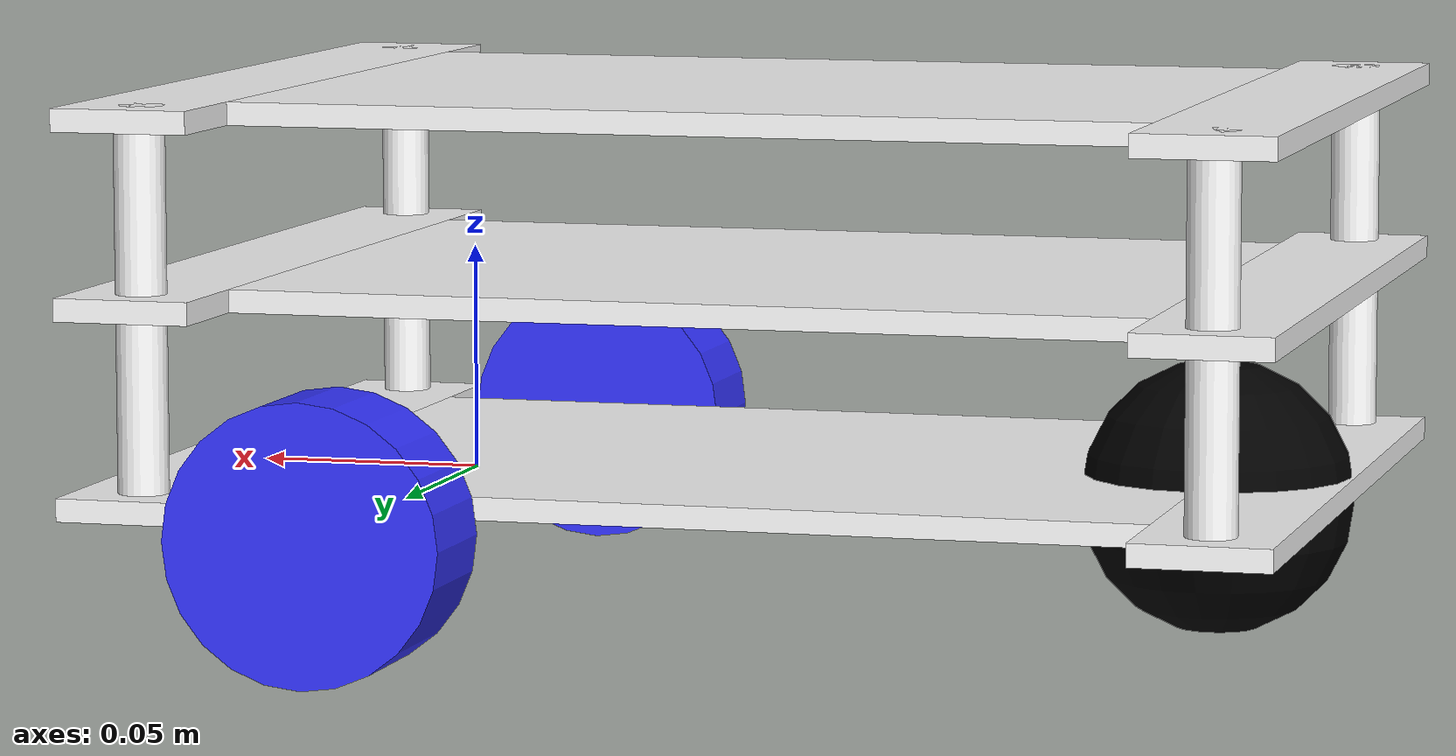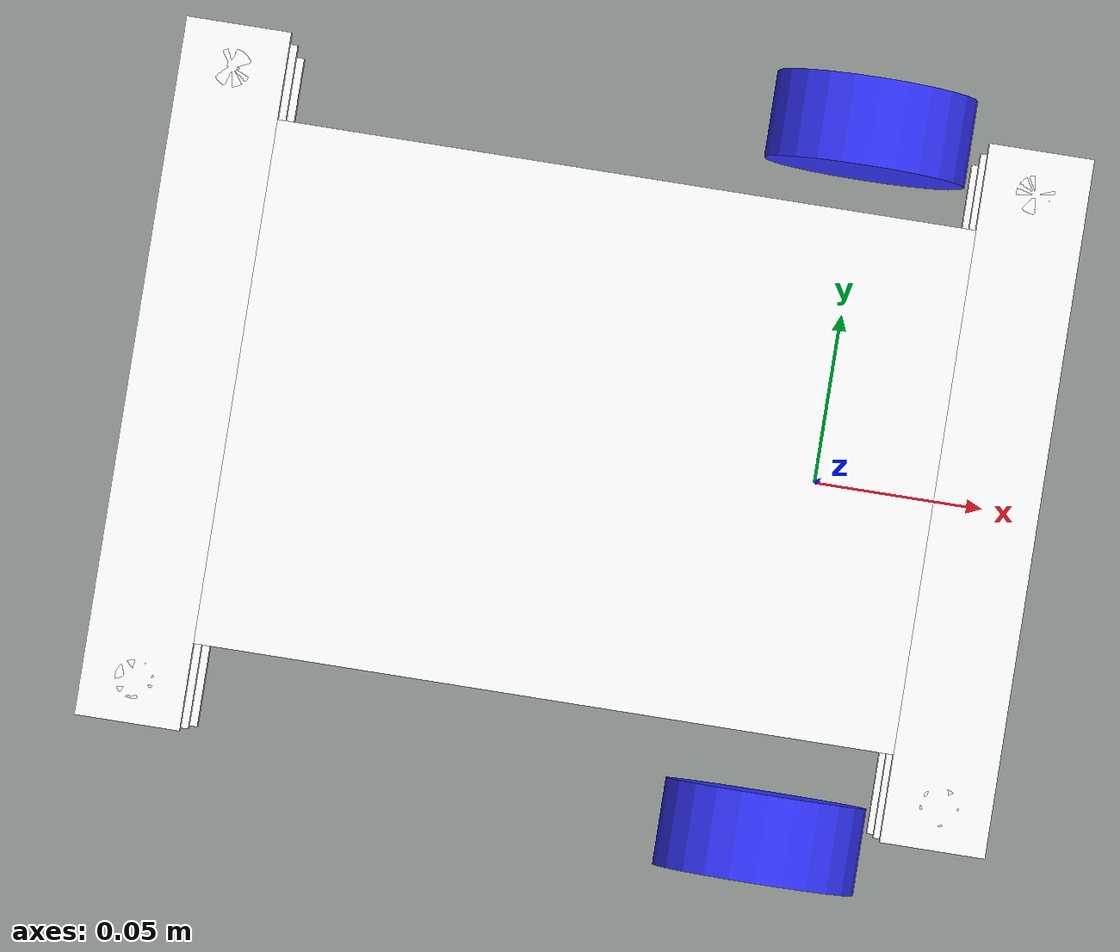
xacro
<?xml version="1.0"?>
<robot xmlns:xacro="http://www.ros.org/wiki/xacro" >

    <xacro:include filename ="inertial_macros.xacro"/>

    <material name ="white">
        <color rgba="1 1 1 1" />
    </material>

    <material name ="orange">
        <color rgba="1 0.3 0.1 1" />
    </material>

    <material name ="blue">
        <color rgba="0.2 0.2 1 1" />
    </material>

    <material name ="black">
        <color rgba="0 0 0 1" />
    </material>

    <material name ="red">
        <color rgba="1 0 0 1" />
    </material>

<!--  BASE LINK  -->
    <link name="base_link">

    </link>
<!--BASE_FOOT LINK-->

    <joint name="base_footprint_joint" type="fixed">
        <parent link="base_link"/>
        <child link="base_footprint"/>
        <origin xyz="0 0 0" rpy="0 0 0"/>
    </joint>

    <link name="base_footprint">

    </link>

<!--  Robot URDF description  -->
    <joint name="chassis_joint" type="fixed">
        <parent link= "base_link"/>
        <child link="chassis"/>
        <origin xyz="-0.069 0 0"/>
    </joint>

    <link name="chassis">
        <visual>
            <origin xyz="0 0 0.0025"/>
            <geometry>
                <box size="0.2 0.15 0.005"/>
            </geometry>
            <material name="white"/>
        </visual>
        <collision>
            <origin xyz="0 0 0.0025"/>
            <geometry>
                <box size="0.2 0.15 0.005"/>
            </geometry>
        </collision>
        <xacro:inertial_box mass="0.015" x="0.2" y="0.15" z="0.005">
            <origin xyz= "0 0 0.0025" rpy="0 0 0"/>
        </xacro:inertial_box>

        <!-- front chassis -->
        <visual>
            <origin xyz="0.115 0 0.0025"/>
            <geometry>
                <box size="0.03 0.2 0.005"/>
            </geometry>
            <material name="white"/>
        </visual>
        <collision>
            <origin xyz="0.115 0 0.0025"/>
            <geometry>
                <box size="0.03 0.2 0.005"/>
            </geometry>
        </collision>
        <xacro:inertial_box mass="0.005" x="0.03" y="0.2" z="0.005">
            <origin xyz= "0.115 0 0.0025" rpy="0 0 0"/>
        </xacro:inertial_box>

        <!-- back chassis -->
        <visual>
            <origin xyz="-0.115 0 0.0025"/>
            <geometry>
                <box size="0.03 0.2 0.005"/>
            </geometry>
            <material name="white"/>
        </visual>
        <collision>
            <origin xyz="-0.115 0 0.0025"/>
            <geometry>
                <box size="0.03 0.2 0.005"/>
            </geometry>
        </collision>
        <xacro:inertial_box mass="0.005" x="0.03" y="0.2" z="0.005">
            <origin xyz= "-0.115 0 0.0025" rpy="0 0 0"/>
        </xacro:inertial_box>

        <!-- Front_Right_spacer -->
        <visual>
            <origin xyz="0.115 0.0875 0.025"/>
            <geometry>
                <cylinder radius = "0.0055" length="0.045"/>
            </geometry>
            <material name="white"/>
        </visual>
        <collision>
            <origin xyz="0.115 0.0875 0.025"/>
            <geometry>
                <cylinder radius = "0.0055" length="0.045"/>
            </geometry>
        </collision>
        <xacro:inertial_cylinder mass="0.005" length="0.04" radius="0.0055">
            <origin xyz= "0.115 0.0875 0.025" rpy="0 0 0"/>
        </xacro:inertial_cylinder>

        <!-- Front_Left_spacer -->
        <visual>
            <origin xyz="0.115 -0.0875 0.025"/>
            <geometry>
                <cylinder radius = "0.0055" length="0.045"/>
            </geometry>
            <material name="white"/>
        </visual>
        <collision>
            <origin xyz="0.115 -0.0875 0.025"/>
            <geometry>
                <cylinder radius = "0.0055" length="0.045"/>
            </geometry>
        </collision>
        <xacro:inertial_cylinder mass="0.005" length="0.04" radius="0.0055">
            <origin xyz= "0.115 -0.0875 0.025" rpy="0 0 0"/>
        </xacro:inertial_cylinder>

        <!-- Back_Right_spacer -->
        <visual>
            <origin xyz="-0.115 0.0875 0.025"/>
            <geometry>
                <cylinder radius = "0.0055" length="0.045"/>
            </geometry>
            <material name="white"/>
        </visual>
        <collision>
            <origin xyz="-0.115 0.0875 0.025"/>
            <geometry>
                <cylinder radius = "0.0055" length="0.045"/>
            </geometry>
        </collision>
        <xacro:inertial_cylinder mass="0.005" length="0.04" radius="0.0055">
            <origin xyz= "-0.115 0.0875 0.025" rpy="0 0 0"/>
        </xacro:inertial_cylinder>

        <!-- Back_left_spacer -->
        <visual>
            <origin xyz="-0.115 -0.0875 0.025"/>
            <geometry>
                <cylinder radius = "0.0055" length="0.045"/>
            </geometry>
            <material name="white"/>
        </visual>
        <collision>
            <origin xyz="-0.115 -0.0875 0.025"/>
            <geometry>
                <cylinder radius = "0.0055" length="0.045"/>
            </geometry>
        </collision>
        <xacro:inertial_cylinder mass="0.005" length="0.04" radius="0.0055">
            <origin xyz= "-0.115 -0.0875 0.025" rpy="0 0 0"/>
        </xacro:inertial_cylinder>

        <!--Second stage-->                                     <!--Second stage-->

        <visual>
            <origin xyz="0 0 0.045"/>
            <geometry>
                <box size="0.2 0.15 0.005"/>
            </geometry>
            <material name="white"/>
        </visual>
        <collision>
            <origin xyz="0 0 0.045"/>
            <geometry>
                <box size="0.2 0.15 0.005"/>
            </geometry>
        </collision>
        <xacro:inertial_box mass="0.015" x="0.2" y="0.15" z="0.005">
            <origin xyz= "0 0 0.045" rpy="0 0 0"/>
        </xacro:inertial_box>

        <!-- front chassis -->
        <visual>
            <origin xyz="0.115 0 0.045"/>
            <geometry>
                <box size="0.03 0.2 0.005"/>
            </geometry>
            <material name="white"/>
        </visual>
        <collision>
            <origin xyz="0.115 0 0.045"/>
            <geometry>
                <box size="0.03 0.2 0.005"/>
            </geometry>
        </collision>
        <xacro:inertial_box mass="0.005" x="0.03" y="0.2" z="0.005">
            <origin xyz= "0.115 0 0.045" rpy="0 0 0"/>
        </xacro:inertial_box>

        <!-- back chassis -->
        <visual>
            <origin xyz="-0.115 0 0.045"/>
            <geometry>
                <box size="0.03 0.2 0.005"/>
            </geometry>
            <material name="white"/>
        </visual>
        <collision>
            <origin xyz="-0.115 0 0.045"/>
            <geometry>
                <box size="0.03 0.2 0.005"/>
            </geometry>
        </collision>
        <xacro:inertial_box mass="0.005" x="0.03" y="0.2" z="0.005">
            <origin xyz= "-0.115 0 0.045" rpy="0 0 0"/>
        </xacro:inertial_box>

        <!-- Front_Right_spacer -->
        <visual>
            <origin xyz="0.115 0.0875 0.065"/>
            <geometry>
                <cylinder radius = "0.0055" length="0.045"/>
            </geometry>
            <material name="white"/>
        </visual>
        <collision>
            <origin xyz="0.115 0.0875 0.065"/>
            <geometry>
                <cylinder radius = "0.0055" length="0.045"/>
            </geometry>
        </collision>
        <xacro:inertial_cylinder mass="0.005" length="0.04" radius="0.0055">
            <origin xyz= "0.115 0.0875 0.065" rpy="0 0 0"/>
        </xacro:inertial_cylinder>

        <!-- Front_Left_spacer -->
        <visual>
            <origin xyz="0.115 -0.0875 0.065"/>
            <geometry>
                <cylinder radius = "0.0055" length="0.045"/>
            </geometry>
            <material name="white"/>
        </visual>
        <collision>
            <origin xyz="0.115 -0.0875 0.065"/>
            <geometry>
                <cylinder radius = "0.0055" length="0.045"/>
            </geometry>
        </collision>
        <xacro:inertial_cylinder mass="0.005" length="0.04" radius="0.0055">
            <origin xyz= "0.115 -0.0875 0.065" rpy="0 0 0"/>
        </xacro:inertial_cylinder>

        <!-- Back_Right_spacer -->
        <visual>
            <origin xyz="-0.115 0.0875 0.065"/>
            <geometry>
                <cylinder radius = "0.0055" length="0.045"/>
            </geometry>
            <material name="white"/>
        </visual>
        <collision>
            <origin xyz="-0.115 0.0875 0.065"/>
            <geometry>
                <cylinder radius = "0.0055" length="0.045"/>
            </geometry>
        </collision>
        <xacro:inertial_cylinder mass="0.005" length="0.04" radius="0.0055">
            <origin xyz= "-0.115 0.0875 0.065" rpy="0 0 0"/>
        </xacro:inertial_cylinder>

        <!-- Back_left_spacer -->
        <visual>
            <origin xyz="-0.115 -0.0875 0.065"/>
            <geometry>
                <cylinder radius = "0.0055" length="0.045"/>
            </geometry>
            <material name="white"/>
        </visual>
        <collision>
            <origin xyz="-0.115 -0.0875 0.065"/>
            <geometry>
                <cylinder radius = "0.0055" length="0.045"/>
            </geometry>
        </collision>
        <xacro:inertial_cylinder mass="0.005" length="0.04" radius="0.0055">
            <origin xyz= "-0.115 -0.0875 0.065" rpy="0 0 0"/>
        </xacro:inertial_cylinder>

        <!--Third stage-->                                     <!--Third stage-->

        <visual>
            <origin xyz="0 0 0.085"/>
            <geometry>
                <box size="0.2 0.15 0.005"/>
            </geometry>
            <material name="white"/>
        </visual>
        <collision>
            <origin xyz="0 0 0.085"/>
            <geometry>
                <box size="0.2 0.15 0.005"/>
            </geometry>
        </collision>
        <xacro:inertial_box mass="0.015" x="0.2" y="0.15" z="0.005">
            <origin xyz= "0 0 0.085" rpy="0 0 0"/>
        </xacro:inertial_box>

        <!-- front chassis -->
        <visual>
            <origin xyz="0.115 0 0.085"/>
            <geometry>
                <box size="0.03 0.2 0.005"/>
            </geometry>
            <material name="white"/>
        </visual>
        <collision>
            <origin xyz="0.115 0 0.085"/>
            <geometry>
                <box size="0.03 0.2 0.005"/>
            </geometry>
        </collision>
        <xacro:inertial_box mass="0.005" x="0.03" y="0.2" z="0.005">
            <origin xyz= "0.115 0 0.085" rpy="0 0 0"/>
        </xacro:inertial_box>

        <!-- back chassis -->
        <visual>
            <origin xyz="-0.115 0 0.085"/>
            <geometry>
                <box size="0.03 0.2 0.005"/>
            </geometry>
            <material name="white"/>
        </visual>
        <collision>
            <origin xyz="-0.115 0 0.085"/>
            <geometry>
                <box size="0.03 0.2 0.005"/>
            </geometry>
        </collision>
        <xacro:inertial_box mass="0.005" x="0.03" y="0.2" z="0.005">
            <origin xyz= "-0.115 0 0.085" rpy="0 0 0"/>
        </xacro:inertial_box>
    </link>

    <!-- Wheels -->       <!-- Wheels -->

     <!-- Left Wheel Link-->

    <joint name="left_wheel_joint" type="continuous">
        <parent link= "base_link"/>
        <child link="left_wheel"/>
        <origin xyz="0 0.106 0" rpy="-${pi/2} 0 0"/>
        <axis xyz="0 0 1"/>
        <limit effort="100" velocity="10.0"/>
        <dynamics damping="0.1" friction="0.1"/>
    </joint>

    <link name="left_wheel">
        <visual>
            <geometry>
                <cylinder radius="0.03" length="0.026"/>
            </geometry>
            <material name="blue"/>
        </visual>
        <collision>
            <geometry>
                <cylinder radius="0.03" length="0.026"/>
            </geometry>
        </collision>
        <xacro:inertial_cylinder mass="0.02" length="0.026" radius="0.03">
            <origin xyz= "0 0 0" rpy="0 0 0"/>
        </xacro:inertial_cylinder>
    </link>

    <!-- Right Wheel Link-->

    <joint name="right_wheel_joint" type="continuous">
        <parent link= "base_link"/>
        <child link="right_wheel"/>
        <origin xyz="0. -0.106 0" rpy="${pi/2} 0 0"/>
        <axis xyz="0 0 -1"/>
        <limit effort="100" velocity="10.0"/>
        <dynamics damping="0.1" friction="0.1"/>
    </joint>

    <link name="right_wheel">
        <visual>
            <geometry>
                <cylinder radius="0.03" length="0.026"/>
            </geometry>
            <material name="blue"/>
        </visual>
        <collision>
            <geometry>
                <cylinder radius="0.03" length="0.026"/>
            </geometry>
        </collision>
        <xacro:inertial_cylinder mass="0.02" length="0.026" radius="0.03">
            <origin xyz= "0 0 0" rpy="0 0 0"/>
        </xacro:inertial_cylinder>
    </link>

    <!--Caster Wheel Link -->
    <joint name="caster_wheel_joint" type="fixed">
        <parent link="chassis"/>
        <child link="caster_wheel"/>
        <origin xyz="-0.1 0 0"/>
    </joint>

    <link name="caster_wheel">
        <visual>
            <geometry>
                <sphere radius="0.03"/>
            </geometry>
            <material name="black"/>
        </visual>
        <collision>
            <geometry>
                <sphere radius="0.03"/>
            </geometry>
        </collision>
        <xacro:inertial_sphere mass="0.02" radius="0.03">
            <origin xyz="0 0 0" rpy="0 0 0"/>
        </xacro:inertial_sphere>
    </link>

    <link name="robot_front"/>

    <joint name="chassis_joint_1" type="fixed">
        <parent link= "chassis"/>
        <child link="robot_front"/>
        <origin xyz="0.13 0 0"/>
    </joint>

        <!-- Gazebo Parameters adding friction by decreasing mu -->
    <gazebo reference="back_chassis">
        <mu1>1.0</mu1>
        <mu2>1.0</mu2>
    </gazebo>

    <gazebo reference="right_wheel">
        <mu1>1.0</mu1>
        <mu2>1.0</mu2>
    </gazebo>

    <gazebo reference="left_wheel">
        <mu1>1.0</mu1>
        <mu2>1.0</mu2>
    </gazebo>

    <gazebo reference="caster_wheel">
        <mu1>0.000001</mu1>
        <mu2>0.000001</mu2>
    </gazebo>

</robot>
